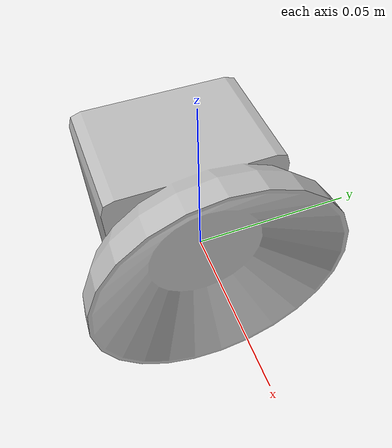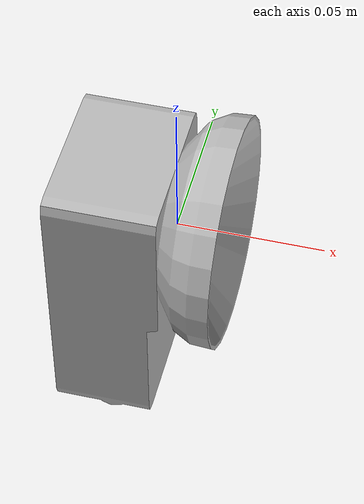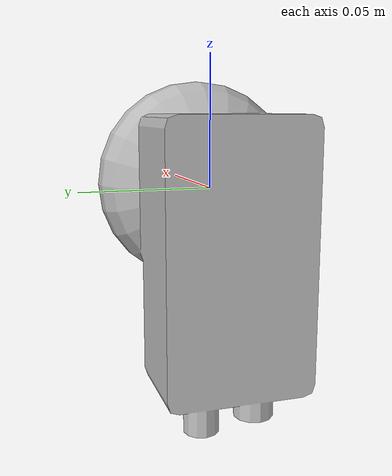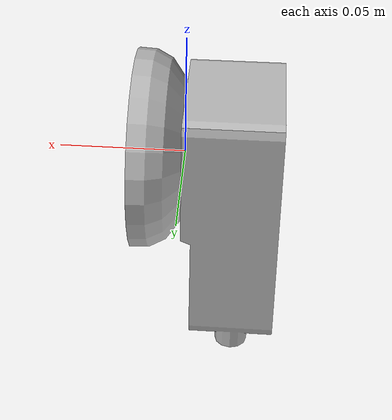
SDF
<?xml version="1.0" ?>
<sdf version="1.6">
  <!-- Define the SDF model.                          -->
  <!-- "name" (as seen in Gazebo) must be unique.     -->
  <!-- "name" becomes the default topic where object  -->
  <!-- poses are published in ROS under the namespace -->
  <!-- /logical_camera e.g.                           -->
  <!--     /logical_camera/logical_camera1            -->
  <!-- You can change the namespace and image topic   -->
  <model name="logical_camera1">

    <!-- Define Gazebo plugin to use                  -->
    <!-- The logical camera plugin source is found in -->
    <!-- /src and /include folders                    -->
    <plugin name="ros_logical_camera" filename="libROSLogicalCameraPlugin.so">
      <!-- Change namespace from default "/logical_camera" -->
      <!-- This will publish to /omtp/logical_camera1      -->
      <!-- instead.                                        -->
      <robotNamespace>omtp</robotNamespace>

      <!-- Overrule the default topic where object poses   -->
      <!-- are published. The topic then becomes e.g.      -->
      <!--     /omtp/my_logical_camera1                    -->
      <image_topic_ros>my_logical_camera1</image_topic_ros>

      <!-- Additional plugin settings (optional)           -->
    </plugin>

    <!-- Logical camera link and CAD model            -->
    <link name="logical_camera_link">
      <gravity>false</gravity>
      <inertial>
        <mass>0.1</mass>
        <inertia>
          <ixx>0.000166667</ixx>
          <iyy>0.000166667</iyy>
          <izz>0.000166667</izz>
        </inertia>
      </inertial>

      <collision name="collision">
        <pose>0 0 -0.02 0 0 -1.5708</pose>
        <geometry>
          <mesh>
            <uri>model://logical_camera/meshes/camera.dae</uri>
          </mesh>
        </geometry>
      </collision>

      <visual name="visual">
        <pose>0 0 -0.02 0 0 -1.5708</pose>
        <geometry>
          <mesh>
            <uri>model://logical_camera/meshes/camera.dae</uri>
          </mesh>
        </geometry>
      </visual>

      <!-- Set up logical camera sensor                 -->
      <!-- http://sdformat.org/spec?elem=sensor&ver=1.6 -->
      <sensor name="logical_camera1" type="logical_camera">
        <logical_camera>
          <near>0.2</near>
          <far>2.4</far>
          <horizontal_fov>1.1</horizontal_fov>
          <aspect_ratio>1.5</aspect_ratio>
        </logical_camera>

        <visualize>true</visualize>
        <always_on>true</always_on>
        <update_rate>10</update_rate>
      </sensor>
    </link>

  </model>
</sdf>
